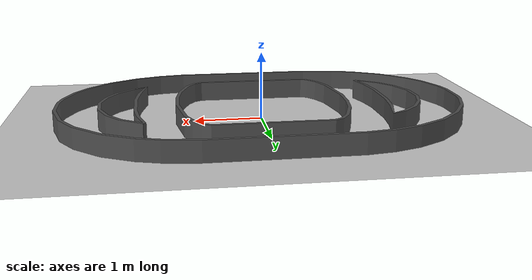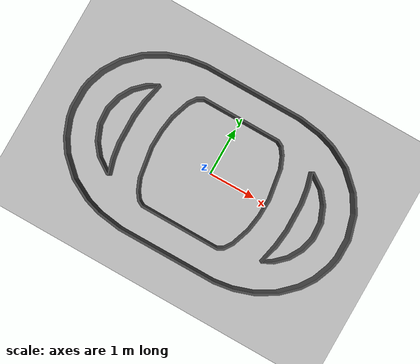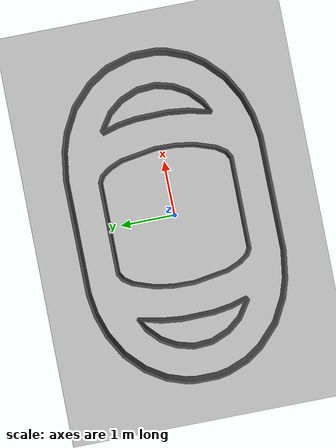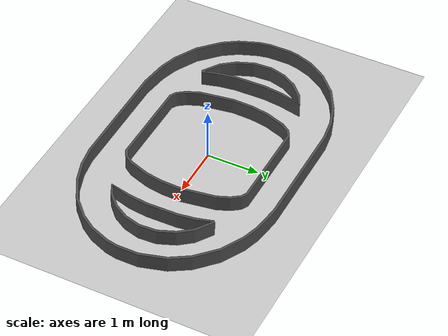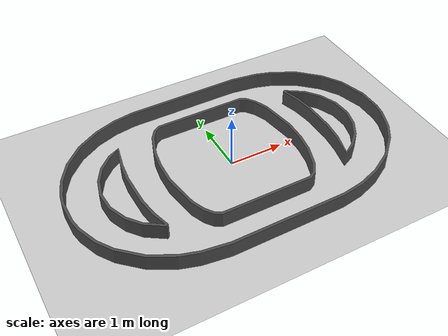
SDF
<?xml version="1.0" ?>
<sdf version="1.6">
  <world name="road_env_world">

    <scene>
      <ambient>0.6 0.6 0.6 1</ambient>
      <background>0.2 0.2 0.2 1</background>
      <shadows>true</shadows>
    </scene>

    <light name="sun" type="directional">
      <pose>0 0 10 0.4 0.8 0</pose>
      <direction>-0.3 -0.3 -1</direction>
      <diffuse>1 1 1 1</diffuse>
      <specular>0.1 0.1 0.1 1</specular>
      <cast_shadows>true</cast_shadows>
    </light>

    <include>
      <uri>model://ground_plane</uri>
    </include>

    <include>
      <uri>model://road_env</uri>
    </include>

    <gui fullscreen="0">
      <camera name="top_view">
        <pose>0 0 20 0 1.57079632679 0</pose>
        <projection_type>orthographic</projection_type>
	      <ortho_width>40</ortho_width>
      </camera>
    </gui>

  </world>
</sdf>

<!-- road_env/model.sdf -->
<sdf version="1.7">
  <model name="road_env">
    <static>true</static>

    <link name="walls">
      <collision name="collision">
        <geometry>
          <mesh>
            <uri>model://road_env/meshes/walls.stl</uri>
          </mesh>
        </geometry>
      </collision>

      <visual name="visual">
        <geometry>
          <mesh>
            <uri>model://road_env/meshes/walls.stl</uri>
          </mesh>
        </geometry>

        <cast_shadows>false</cast_shadows>
        <lighting>false</lighting>

        <material>
          <ambient>0.2 0.2 0.2 1</ambient>
          <diffuse>0.3 0.3 0.3 1</diffuse>
          <specular>0 0 0 1</specular>
        </material>

      </visual>
    </link>
  </model>
</sdf>
